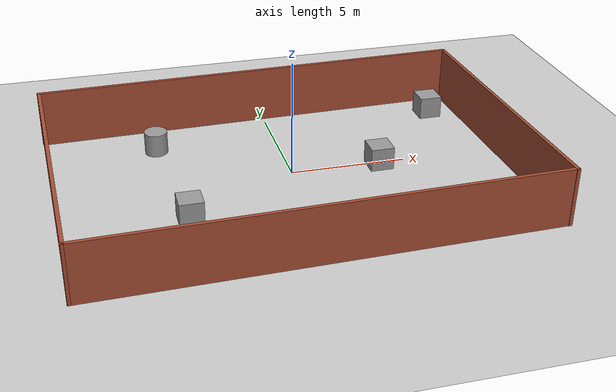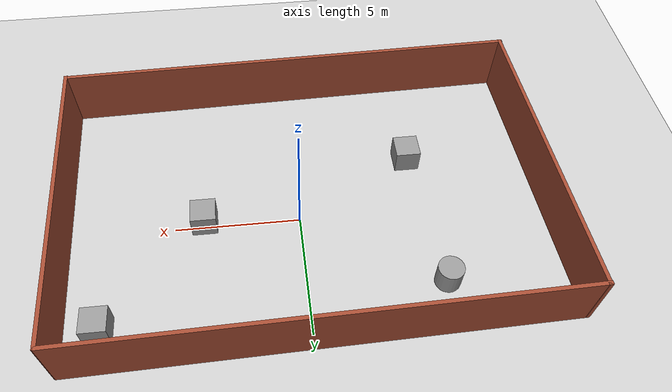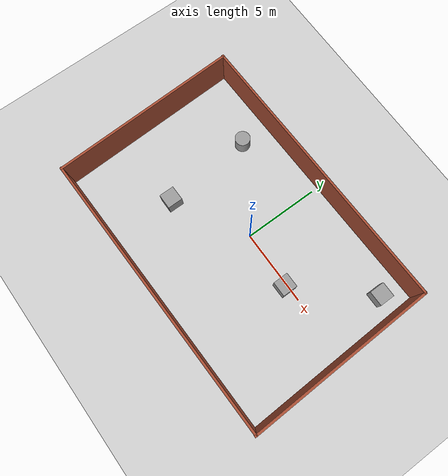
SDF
<sdf version="1.7">
 <world name="default">
  <light name="sun" type="directional">
   <pose>0 0 10 0 -0 0</pose>
   <diffuse>0.8 0.8 0.8 1</diffuse>
   <specular>0.2 0.2 0.2 1</specular>
   <attenuation>
    <range>1000</range>
    <constant>0.9</constant>
    <linear>0.01</linear>
    <quadratic>0.001</quadratic>
   </attenuation>
   <direction>-0.5 0.1 -0.9</direction>
   <spot><inner_angle>0</inner_angle><outer_angle>0</outer_angle><falloff>0</falloff></spot>
  </light>
  <model name="ground_plane">
   <static>1</static>
   <link name="link">
    <collision name="collision">
     <geometry><plane><normal>0 0 1</normal><size>100 100</size></plane></geometry>
     <surface>
      <contact><collide_bitmask>65535</collide_bitmask></contact>
      <friction><ode><mu>100</mu><mu2>50</mu2></ode></friction>
     </surface>
    </collision>
    <visual name="visual">
     <cast_shadows>0</cast_shadows>
     <geometry><plane><normal>0 0 1</normal><size>100 100</size></plane></geometry>
     <material>
      <script><uri>file://media/materials/scripts/gazebo.material</uri><name>Gazebo/Grey</name></script>
     </material>
    </visual>
   </link>
  </model>
  <gravity>0 0 -9.8</gravity>
  <magnetic_field>6e-06 2.3e-05 -4.2e-05</magnetic_field>
  <atmosphere type="adiabatic"/>
  <physics type="ode">
   <max_step_size>0.001</max_step_size>
   <real_time_factor>1</real_time_factor>
   <real_time_update_rate>1000</real_time_update_rate>
  </physics>
  <scene><ambient>0.4 0.4 0.4 1</ambient><background>0.7 0.7 0.7 1</background><shadows>1</shadows></scene>
  <spherical_coordinates>
   <surface_model>EARTH_WGS84</surface_model>
   <latitude_deg>0</latitude_deg>
   <longitude_deg>0</longitude_deg>
   <elevation>0</elevation>
   <heading_deg>0</heading_deg>
  </spherical_coordinates>
  <model name="walll">
   <pose>-0.340832 -0.675202 0 0 -0 0</pose>
   <link name="Wall_0">
    <collision name="Wall_0_Collision">
     <geometry><box><size>19.1731 0.15 2.5</size></box></geometry>
     <pose>0 0 1.25 0 -0 0</pose>
    </collision>
    <visual name="Wall_0_Visual">
     <pose>0 0 1.25 0 -0 0</pose>
     <geometry><box><size>19.1731 0.15 2.5</size></box></geometry>
     <material>
      <script><uri>file://media/materials/scripts/gazebo.material</uri><name>Gazebo/Bricks</name></script>
      <ambient>1 1 1 1</ambient>
     </material>
     <meta><layer>0</layer></meta>
    </visual>
    <pose>-0.211553 6.15643 0 0 -0 -3.12045</pose>
   </link>
   <link name="Wall_1">
    <collision name="Wall_1_Collision">
     <geometry><box><size>12.4681 0.15 2.5</size></box></geometry>
     <pose>0 0 1.25 0 -0 0</pose>
    </collision>
    <visual name="Wall_1_Visual">
     <pose>0 0 1.25 0 -0 0</pose>
     <geometry><box><size>12.4681 0.15 2.5</size></box></geometry>
     <material>
      <script><uri>file://media/materials/scripts/gazebo.material</uri><name>Gazebo/Bricks</name></script>
      <ambient>1 1 1 1</ambient>
     </material>
     <meta><layer>0</layer></meta>
    </visual>
    <pose>-9.50978 -0.200775 0 0 -0 -1.53977</pose>
   </link>
   <link name="Wall_2">
    <collision name="Wall_2_Collision">
     <geometry><box><size>19.1731 0.15 2.5</size></box></geometry>
     <pose>0 0 1.25 0 -0 0</pose>
    </collision>
    <visual name="Wall_2_Visual">
     <pose>0 0 1.25 0 -0 0</pose>
     <geometry><box><size>19.1731 0.15 2.5</size></box></geometry>
     <material>
      <script><uri>file://media/materials/scripts/gazebo.material</uri><name>Gazebo/Bricks</name></script>
      <ambient>1 1 1 1</ambient>
     </material>
     <meta><layer>0</layer></meta>
    </visual>
    <pose>0.170605 -6.15571 0 0 -0 0.021148</pose>
   </link>
   <link name="Wall_3">
    <collision name="Wall_3_Collision">
     <geometry><box><size>12.4681 0.15 2.5</size></box></geometry>
     <pose>0 0 1.25 0 -0 0</pose>
    </collision>
    <visual name="Wall_3_Visual">
     <pose>0 0 1.25 0 -0 0</pose>
     <geometry><box><size>12.4681 0.15 2.5</size></box></geometry>
     <material>
      <script><uri>file://media/materials/scripts/gazebo.material</uri><name>Gazebo/Bricks</name></script>
      <ambient>1 1 1 1</ambient>
     </material>
     <meta><layer>0</layer></meta>
    </visual>
    <pose>9.52917 0.181383 0 0 -0 1.60183</pose>
   </link>
   <static>1</static>
  </model>
  <model name="unit_box">
   <pose>7.67895 4.09143 0.499995 -1e-05 -0 -0</pose>
   <link name="link">
    <inertial>
     <mass>1</mass>
     <inertia>
      <ixx>0.166667</ixx>
      <ixy>0</ixy>
      <ixz>0</ixz>
      <iyy>0.166667</iyy>
      <iyz>0</iyz>
      <izz>0.166667</izz>
     </inertia>
    </inertial>
    <collision name="collision"><geometry><box><size>1 1 1</size></box></geometry></collision>
    <visual name="visual">
     <geometry><box><size>1 1 1</size></box></geometry>
     <material>
      <script><name>Gazebo/Grey</name><uri>file://media/materials/scripts/gazebo.material</uri></script>
     </material>
    </visual>
   </link>
  </model>
  <model name="unit_cylinder">
   <pose>-5.30102 3.33356 0.499997 3e-06 4e-06 -0</pose>
   <link name="link">
    <inertial>
     <mass>1</mass>
     <inertia><ixx>0.145833</ixx><ixy>0</ixy><ixz>0</ixz><iyy>0.145833</iyy><iyz>0</iyz><izz>0.125</izz></inertia>
    </inertial>
    <collision name="collision">
     <geometry><cylinder><radius>0.5</radius><length>1</length></cylinder></geometry>
    </collision>
    <visual name="visual">
     <geometry><cylinder><radius>0.5</radius><length>1</length></cylinder></geometry>
     <material>
      <script><name>Gazebo/Grey</name><uri>file://media/materials/scripts/gazebo.material</uri></script>
     </material>
    </visual>
   </link>
  </model>
  <model name="unit_box_0">
   <pose>-4.76994 -2.63849 0.499995 -1e-05 -0 0</pose>
   <link name="link">
    <inertial>
     <mass>1</mass>
     <inertia>
      <ixx>0.166667</ixx>
      <ixy>0</ixy>
      <ixz>0</ixz>
      <iyy>0.166667</iyy>
      <iyz>0</iyz>
      <izz>0.166667</izz>
     </inertia>
    </inertial>
    <collision name="collision"><geometry><box><size>1 1 1</size></box></geometry></collision>
    <visual name="visual">
     <geometry><box><size>1 1 1</size></box></geometry>
     <material>
      <script><name>Gazebo/Grey</name><uri>file://media/materials/scripts/gazebo.material</uri></script>
     </material>
    </visual>
   </link>
  </model>
  <model name="unit_box_1">
   <pose>3.81048 -0.212141 0.5 0 -0 0</pose>
   <link name="link">
    <inertial>
     <mass>1</mass>
     <inertia>
      <ixx>0.166667</ixx>
      <ixy>0</ixy>
      <ixz>0</ixz>
      <iyy>0.166667</iyy>
      <iyz>0</iyz>
      <izz>0.166667</izz>
     </inertia>
    </inertial>
    <collision name="collision"><geometry><box><size>1 1 1</size></box></geometry></collision>
    <visual name="visual">
     <geometry><box><size>1 1 1</size></box></geometry>
     <material>
      <script><name>Gazebo/Grey</name><uri>file://media/materials/scripts/gazebo.material</uri></script>
     </material>
    </visual>
   </link>
  </model>
 </world>
</sdf>
